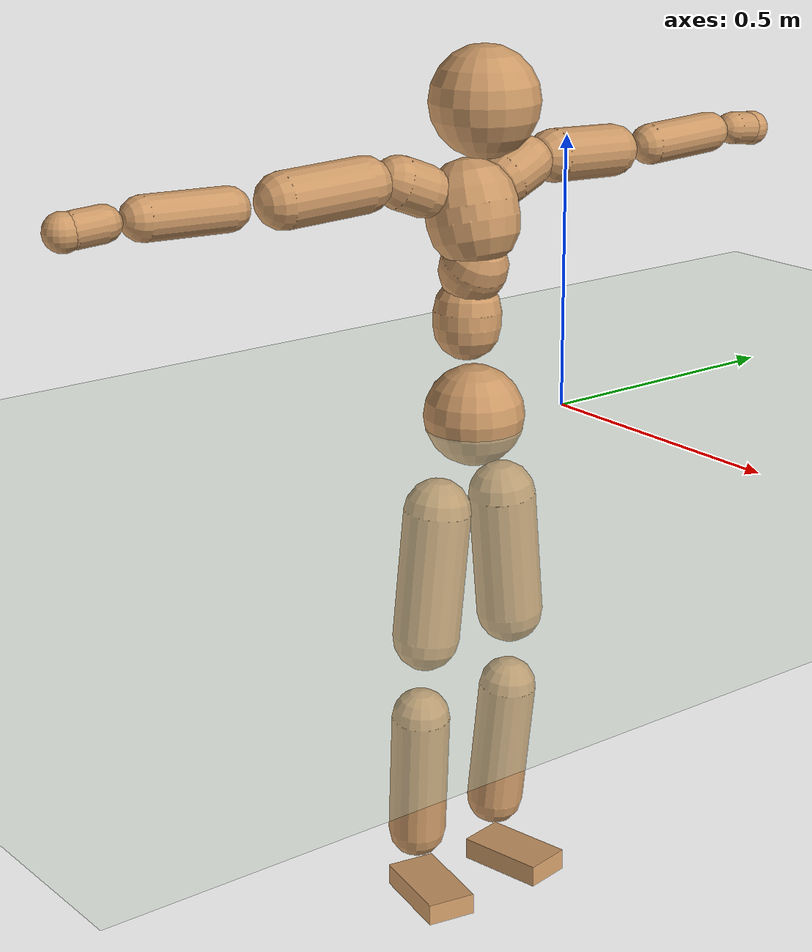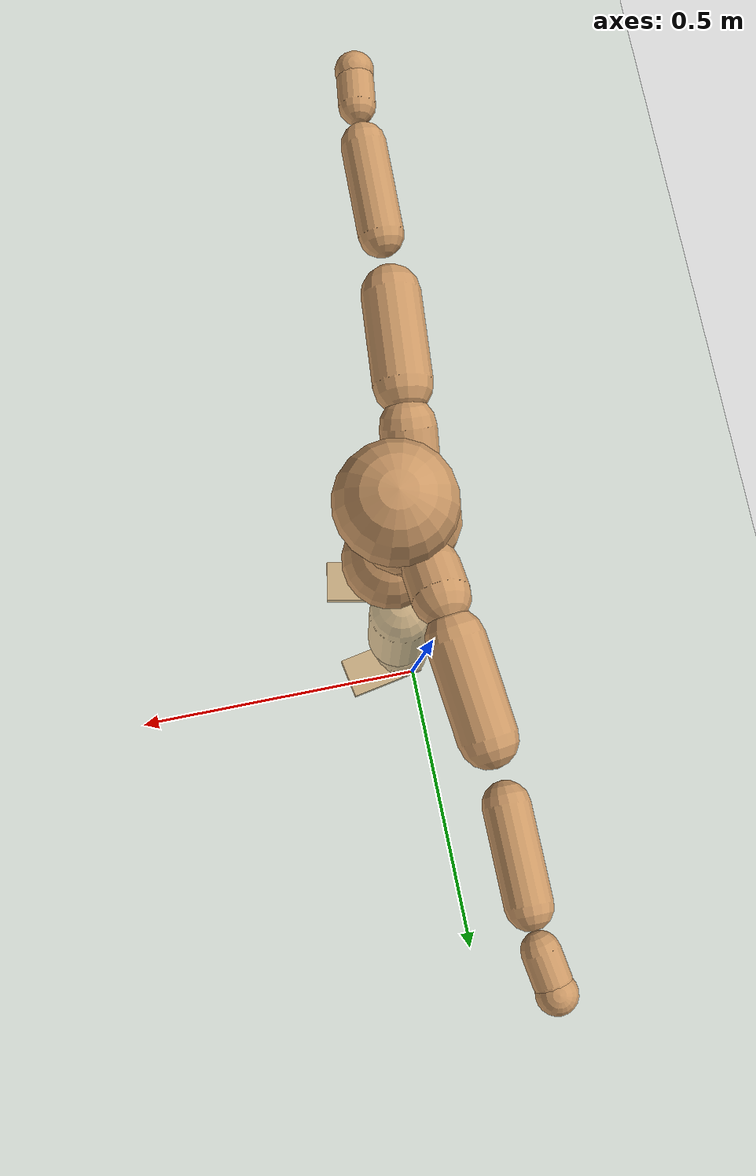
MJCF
<mujoco model="humanoid">
  <compiler coordinate="local"/>
  <default>
    <joint damping="0.0" armature="0.01" stiffness="0.0" limited="true"/>
    <geom conaffinity="1" condim="3" contype="7" margin="0.001" rgba="0.8 0.6 .4 1"/>
  </default>
  <asset>
    <texture type="skybox" builtin="gradient" rgb1=".4 .5 .6" rgb2="0 0 0" width="100" height="100"/>
    <texture builtin="flat" height="1278" mark="cross" markrgb="1 1 1" name="texgeom" random="0.01" rgb1="0.8 0.6 0.4" rgb2="0.8 0.6 0.4" type="cube" width="127"/>
    <texture builtin="checker" height="100" name="texplane" rgb1="0 0 0" rgb2="0.8 0.8 0.8" type="2d" width="100"/>
    <material name="MatPlane" reflectance="0.5" shininess="1" specular="1" texrepeat="60 60" texture="texplane"/>
    <material name="geom" texture="texgeom" texuniform="true"/>
  </asset>
  <worldbody>
    <light cutoff="100" diffuse="1 1 1" dir="-0 0 -1.3" directional="true" exponent="1" pos="0 0 1.3" specular=".1 .1 .1"/>
    <geom conaffinity="1" condim="3" name="floor" pos="0 0 0" rgba="0.8 0.9 0.8 1" size="100 100 .2" type="plane" material="MatPlane"/>
    <body name="Pelvis" pos="-0.0017 -0.2087 0.0206">
      <freejoint name="Pelvis"/>
      <geom type="sphere" contype="1" conaffinity="1" density="500" size="0.0918" pos="0.0000 0.0000 0.0000" name="Pelvis"/>
      <body name="L_Hip" pos="-0.0133 0.0702 -0.0926">
        <joint name="L_Hip_x" type="hinge" pos="0 0 0" axis="1 0 0" stiffness="800" damping="80" armature="0.02" range="-180.0000 180.0000"/>
        <joint name="L_Hip_y" type="hinge" pos="0 0 0" axis="0 1 0" stiffness="800" damping="80" armature="0.02" range="-180.0000 180.0000"/>
        <joint name="L_Hip_z" type="hinge" pos="0 0 0" axis="0 0 1" stiffness="800" damping="80" armature="0.02" range="-180.0000 180.0000"/>
        <geom type="capsule" contype="1" conaffinity="1" density="500" fromto="-0.0005 0.0072 -0.0790 -0.0020 0.0290 -0.3161" size="0.0627" name="L_Hip"/>
        <body name="L_Knee" pos="-0.0025 0.0362 -0.3952">
          <joint name="L_Knee_x" type="hinge" pos="0 0 0" axis="1 0 0" stiffness="800" damping="80" armature="0.02" range="-180.0000 180.0000"/>
          <joint name="L_Knee_y" type="hinge" pos="0 0 0" axis="0 1 0" stiffness="800" damping="80" armature="0.02" range="-180.0000 180.0000"/>
          <joint name="L_Knee_z" type="hinge" pos="0 0 0" axis="0 0 1" stiffness="800" damping="80" armature="0.02" range="-180.0000 180.0000"/>
          <geom type="capsule" contype="1" conaffinity="1" density="500" fromto="-0.0092 -0.0025 -0.0830 -0.0367 -0.0098 -0.3319" size="0.0542" name="L_Knee"/>
          <body name="L_Ankle" pos="-0.0458 -0.0123 -0.4149">
            <joint name="L_Ankle_x" type="hinge" pos="0 0 0" axis="1 0 0" stiffness="800" damping="80" armature="0.02" range="-180.0000 180.0000"/>
            <joint name="L_Ankle_y" type="hinge" pos="0 0 0" axis="0 1 0" stiffness="800" damping="80" armature="0.02" range="-180.0000 180.0000"/>
            <joint name="L_Ankle_z" type="hinge" pos="0 0 0" axis="0 0 1" stiffness="800" damping="80" armature="0.02" range="-180.0000 180.0000"/>
            <geom type="box" contype="1" conaffinity="1" density="500" pos="0.0598 0.0112 -0.0288" size="0.0857 0.0455 0.0208" quat="0.9957 0.0000 0.0000 0.0925" name="L_Ankle"/>
            <body name="L_Toe" pos="0.1197 0.0224 -0.0576">
              <joint name="L_Toe_x" type="hinge" pos="0 0 0" axis="1 0 0" stiffness="500" damping="50" armature="0.02" range="-180.0000 180.0000"/>
              <joint name="L_Toe_y" type="hinge" pos="0 0 0" axis="0 1 0" stiffness="500" damping="50" armature="0.02" range="-180.0000 180.0000"/>
              <joint name="L_Toe_z" type="hinge" pos="0 0 0" axis="0 0 1" stiffness="500" damping="50" armature="0.02" range="-180.0000 180.0000"/>
              <geom type="box" contype="1" conaffinity="1" density="500" pos="0.0000 0.0000 0.0282" size="0.0009 0.0023 0.001" quat="0.9951 0.0000 0.0000 0.0989" name="L_Toe"/>
            </body>
          </body>
        </body>
      </body>
      <body name="R_Hip" pos="-0.0095 -0.0676 -0.0914">
        <joint name="R_Hip_x" type="hinge" pos="0 0 0" axis="1 0 0" stiffness="800" damping="80" armature="0.02" range="-180.0000 180.0000"/>
        <joint name="R_Hip_y" type="hinge" pos="0 0 0" axis="0 1 0" stiffness="800" damping="80" armature="0.02" range="-180.0000 180.0000"/>
        <joint name="R_Hip_z" type="hinge" pos="0 0 0" axis="0 0 1" stiffness="800" damping="80" armature="0.02" range="-180.0000 180.0000"/>
        <geom type="capsule" contype="1" conaffinity="1" density="500" fromto="-0.0012 -0.0083 -0.0803 -0.0049 -0.0334 -0.3213" size="0.0618" name="R_Hip"/>
        <body name="R_Knee" pos="-0.0061 -0.0417 -0.4017">
          <joint name="R_Knee_x" type="hinge" pos="0 0 0" axis="1 0 0" stiffness="800" damping="80" armature="0.02" range="-180.0000 180.0000"/>
          <joint name="R_Knee_y" type="hinge" pos="0 0 0" axis="0 1 0" stiffness="800" damping="80" armature="0.02" range="-180.0000 180.0000"/>
          <joint name="R_Knee_z" type="hinge" pos="0 0 0" axis="0 0 1" stiffness="800" damping="80" armature="0.02" range="-180.0000 180.0000"/>
          <geom type="capsule" contype="1" conaffinity="1" density="500" fromto="-0.0088 0.0030 -0.0827 -0.0350 0.0120 -0.3308" size="0.0543" name="R_Knee"/>
          <body name="R_Ankle" pos="-0.0438 0.015 -0.4134">
            <joint name="R_Ankle_x" type="hinge" pos="0 0 0" axis="1 0 0" stiffness="800" damping="80" armature="0.02" range="-180.0000 180.0000"/>
            <joint name="R_Ankle_y" type="hinge" pos="0 0 0" axis="0 1 0" stiffness="800" damping="80" armature="0.02" range="-180.0000 180.0000"/>
            <joint name="R_Ankle_z" type="hinge" pos="0 0 0" axis="0 0 1" stiffness="800" damping="80" armature="0.02" range="-180.0000 180.0000"/>
            <geom type="box" contype="1" conaffinity="1" density="500" pos="0.0614 -0.0115 -0.0245" size="0.0867 0.0463 0.0204" quat="0.9957 0.0000 0.0000 -0.0923" name="R_Ankle"/>
            <body name="R_Toe" pos="0.1228 -0.023 -0.049">
              <joint name="R_Toe_x" type="hinge" pos="0 0 0" axis="1 0 0" stiffness="500" damping="50" armature="0.02" range="-180.0000 180.0000"/>
              <joint name="R_Toe_y" type="hinge" pos="0 0 0" axis="0 1 0" stiffness="500" damping="50" armature="0.02" range="-180.0000 180.0000"/>
              <joint name="R_Toe_z" type="hinge" pos="0 0 0" axis="0 0 1" stiffness="500" damping="50" armature="0.02" range="-180.0000 180.0000"/>
              <geom type="box" contype="1" conaffinity="1" density="500" pos="0.0000 0.0000 0.0269" size="0.0008 0.0023 0.0011" quat="0.9965 0.0000 0.0000 -0.0831" name="R_Toe"/>
            </body>
          </body>
        </body>
      </body>
      <body name="Torso" pos="-0.0184 -0.0031 0.1065">
        <joint name="Torso_x" type="hinge" pos="0 0 0" axis="1 0 0" stiffness="1000" damping="100" armature="0.02" range="-180.0000 180.0000"/>
        <joint name="Torso_y" type="hinge" pos="0 0 0" axis="0 1 0" stiffness="1000" damping="100" armature="0.02" range="-180.0000 180.0000"/>
        <joint name="Torso_z" type="hinge" pos="0 0 0" axis="0 0 1" stiffness="1000" damping="100" armature="0.02" range="-180.0000 180.0000"/>
        <geom type="capsule" contype="1" conaffinity="1" density="500" fromto="-0.0008 0.0026 0.0819 -0.0005 0.0017 0.0546" size="0.061566" name="Torso"/>
        <body name="Spine" pos="-0.0013 0.0043 0.1366">
          <joint name="Spine_x" type="hinge" pos="0 0 0" axis="1 0 0" stiffness="1000" damping="100" armature="0.02" range="-180.0000 180.0000"/>
          <joint name="Spine_y" type="hinge" pos="0 0 0" axis="0 1 0" stiffness="1000" damping="100" armature="0.02" range="-180.0000 180.0000"/>
          <joint name="Spine_z" type="hinge" pos="0 0 0" axis="0 0 1" stiffness="1000" damping="100" armature="0.02" range="-180.0000 180.0000"/>
          <geom type="capsule" contype="1" conaffinity="1" density="500" fromto="0.0171 0.0013 0.0297 0.0114 0.0009 0.0198" size="0.061008" name="Spine"/>
          <body name="Chest" pos="0.0284 0.0022 0.0495">
            <joint name="Chest_x" type="hinge" pos="0 0 0" axis="1 0 0" stiffness="1000" damping="100" armature="0.02" range="-180.0000 180.0000"/>
            <joint name="Chest_y" type="hinge" pos="0 0 0" axis="0 1 0" stiffness="1000" damping="100" armature="0.02" range="-180.0000 180.0000"/>
            <joint name="Chest_z" type="hinge" pos="0 0 0" axis="0 0 1" stiffness="1000" damping="100" armature="0.02" range="-180.0000 180.0000"/>
            <geom type="capsule" contype="1" conaffinity="1" density="500" fromto="-0.0220 -0.0008 0.0857 -0.0146 -0.0006 0.0572" size="0.083049" name="Chest"/>
            <body name="Neck" pos="-0.0394 -0.0029 0.2034">
              <joint name="Neck_x" type="hinge" pos="0 0 0" axis="1 0 0" stiffness="500" damping="50" armature="0.02" range="-180.0000 180.0000"/>
              <joint name="Neck_y" type="hinge" pos="0 0 0" axis="0 1 0" stiffness="500" damping="50" armature="0.02" range="-180.0000 180.0000"/>
              <joint name="Neck_z" type="hinge" pos="0 0 0" axis="0 0 1" stiffness="500" damping="50" armature="0.02" range="-180.0000 180.0000"/>
              <geom type="capsule" contype="1" conaffinity="1" density="500" fromto="0.0105 0.0008 0.0131 0.0418 0.0033 0.0523" size="0.0372" name="Neck"/>
              <body name="Head" pos="0.0523 0.0041 0.0654">
                <joint name="Head_x" type="hinge" pos="0 0 0" axis="1 0 0" stiffness="500" damping="50" armature="0.02" range="-180.0000 180.0000"/>
                <joint name="Head_y" type="hinge" pos="0 0 0" axis="0 1 0" stiffness="500" damping="50" armature="0.02" range="-180.0000 180.0000"/>
                <joint name="Head_z" type="hinge" pos="0 0 0" axis="0 0 1" stiffness="500" damping="50" armature="0.02" range="-180.0000 180.0000"/>
                <geom type="sphere" contype="1" conaffinity="1" density="500" size="0.0976" pos="0.0000 0.0000 0.0000" name="Head"/>
              </body>
            </body>
            <body name="L_Thorax" pos="-0.0329 0.0718 0.1136">
              <joint name="L_Thorax_x" type="hinge" pos="0 0 0" axis="1 0 0" stiffness="500" damping="50" armature="0.02" range="-180.0000 180.0000"/>
              <joint name="L_Thorax_y" type="hinge" pos="0 0 0" axis="0 1 0" stiffness="500" damping="50" armature="0.02" range="-180.0000 180.0000"/>
              <joint name="L_Thorax_z" type="hinge" pos="0 0 0" axis="0 0 1" stiffness="500" damping="50" armature="0.02" range="-180.0000 180.0000"/>
              <geom type="capsule" contype="1" conaffinity="1" density="500" fromto="-0.0012 0.0162 0.0068 -0.0049 0.0650 0.0272" size="0.0481" name="L_Thorax"/>
              <body name="L_Shoulder" pos="-0.0061 0.0812 0.034">
                <joint name="L_Shoulder_x" type="hinge" pos="0 0 0" axis="1 0 0" stiffness="500" damping="50" armature="0.02" range="-720.0000 720.0000"/>
                <joint name="L_Shoulder_y" type="hinge" pos="0 0 0" axis="0 1 0" stiffness="500" damping="50" armature="0.02" range="-720.0000 720.0000"/>
                <joint name="L_Shoulder_z" type="hinge" pos="0 0 0" axis="0 0 1" stiffness="500" damping="50" armature="0.02" range="-720.0000 720.0000"/>
                <geom type="capsule" contype="1" conaffinity="1" density="500" fromto="-0.0061 0.0530 -0.0035 -0.0244 0.2118 -0.0141" size="0.0484" name="L_Shoulder"/>
                <body name="L_Elbow" pos="-0.0305 0.2648 -0.0177">
                  <joint name="L_Elbow_x" type="hinge" pos="0 0 0" axis="1 0 0" stiffness="500" damping="50" armature="0.02" range="-720.0000 720.0000"/>
                  <joint name="L_Elbow_y" type="hinge" pos="0 0 0" axis="0 1 0" stiffness="500" damping="50" armature="0.02" range="-720.0000 720.0000"/>
                  <joint name="L_Elbow_z" type="hinge" pos="0 0 0" axis="0 0 1" stiffness="500" damping="50" armature="0.02" range="-720.0000 720.0000"/>
                  <geom type="capsule" contype="1" conaffinity="1" density="500" fromto="-0.0001 0.0509 0.0021 -0.0003 0.2036 0.0086" size="0.0381" name="L_Elbow"/>
                  <body name="L_Wrist" pos="-0.0003 0.2545 0.0107">
                    <joint name="L_Wrist_x" type="hinge" pos="0 0 0" axis="1 0 0" stiffness="300" damping="30" armature="0.02" range="-180.0000 180.0000"/>
                    <joint name="L_Wrist_y" type="hinge" pos="0 0 0" axis="0 1 0" stiffness="300" damping="30" armature="0.02" range="-180.0000 180.0000"/>
                    <joint name="L_Wrist_z" type="hinge" pos="0 0 0" axis="0 0 1" stiffness="300" damping="30" armature="0.02" range="-180.0000 180.0000"/>
                    <geom type="capsule" contype="1" conaffinity="1" density="500" fromto="-0.0028 0.0165 -0.0021 -0.0112 0.0659 -0.0082" size="0.0307" name="L_Wrist"/>
                    <body name="L_Hand" pos="-0.0139 0.0824 -0.0103">
                      <joint name="L_Hand_x" type="hinge" pos="0 0 0" axis="1 0 0" stiffness="300" damping="30" armature="0.02" range="-180.0000 180.0000"/>
                      <joint name="L_Hand_y" type="hinge" pos="0 0 0" axis="0 1 0" stiffness="300" damping="30" armature="0.02" range="-180.0000 180.0000"/>
                      <joint name="L_Hand_z" type="hinge" pos="0 0 0" axis="0 0 1" stiffness="300" damping="30" armature="0.02" range="-180.0000 180.0000"/>
                      <geom type="sphere" contype="1" conaffinity="1" density="500" size="0.0332" pos="0.0000 0.0000 0.0000" name="L_Hand"/>
                    </body>
                  </body>
                </body>
              </body>
            </body>
            <body name="R_Thorax" pos="-0.0375 -0.0731 0.1117">
              <joint name="R_Thorax_x" type="hinge" pos="0 0 0" axis="1 0 0" stiffness="500" damping="50" armature="0.02" range="-180.0000 180.0000"/>
              <joint name="R_Thorax_y" type="hinge" pos="0 0 0" axis="0 1 0" stiffness="500" damping="50" armature="0.02" range="-180.0000 180.0000"/>
              <joint name="R_Thorax_z" type="hinge" pos="0 0 0" axis="0 0 1" stiffness="500" damping="50" armature="0.02" range="-180.0000 180.0000"/>
              <geom type="capsule" contype="1" conaffinity="1" density="500" fromto="-0.0015 -0.0171 0.0067 -0.0059 -0.0685 0.0270" size="0.047" name="R_Thorax"/>
              <body name="R_Shoulder" pos="-0.0074 -0.0856 0.0337">
                <joint name="R_Shoulder_x" type="hinge" pos="0 0 0" axis="1 0 0" stiffness="500" damping="50" armature="0.02" range="-720.0000 720.0000"/>
                <joint name="R_Shoulder_y" type="hinge" pos="0 0 0" axis="0 1 0" stiffness="500" damping="50" armature="0.02" range="-720.0000 720.0000"/>
                <joint name="R_Shoulder_z" type="hinge" pos="0 0 0" axis="0 0 1" stiffness="500" damping="50" armature="0.02" range="-720.0000 720.0000"/>
                <geom type="capsule" contype="1" conaffinity="1" density="500" fromto="-0.0043 -0.0514 -0.0031 -0.0173 -0.2057 -0.0122" size="0.0496" name="R_Shoulder"/>
                <body name="R_Elbow" pos="-0.0216 -0.2571 -0.0153">
                  <joint name="R_Elbow_x" type="hinge" pos="0 0 0" axis="1 0 0" stiffness="500" damping="50" armature="0.02" range="-720.0000 720.0000"/>
                  <joint name="R_Elbow_y" type="hinge" pos="0 0 0" axis="0 1 0" stiffness="500" damping="50" armature="0.02" range="-720.0000 720.0000"/>
                  <joint name="R_Elbow_z" type="hinge" pos="0 0 0" axis="0 0 1" stiffness="500" damping="50" armature="0.02" range="-720.0000 720.0000"/>
                  <geom type="capsule" contype="1" conaffinity="1" density="500" fromto="-0.0009 -0.0521 0.0017 -0.0036 -0.2084 0.0068" size="0.0381" name="R_Elbow"/>
                  <body name="R_Wrist" pos="-0.0045 -0.2605 0.0086">
                    <joint name="R_Wrist_x" type="hinge" pos="0 0 0" axis="1 0 0" stiffness="300" damping="30" armature="0.02" range="-180.0000 180.0000"/>
                    <joint name="R_Wrist_y" type="hinge" pos="0 0 0" axis="0 1 0" stiffness="300" damping="30" armature="0.02" range="-180.0000 180.0000"/>
                    <joint name="R_Wrist_z" type="hinge" pos="0 0 0" axis="0 0 1" stiffness="300" damping="30" armature="0.02" range="-180.0000 180.0000"/>
                    <geom type="capsule" contype="1" conaffinity="1" density="500" fromto="-0.0021 -0.0165 -0.0015 -0.0086 -0.0659 -0.0059" size="0.0312" name="R_Wrist"/>
                    <body name="R_Hand" pos="-0.0107 -0.0823 -0.0074">
                      <joint name="R_Hand_x" type="hinge" pos="0 0 0" axis="1 0 0" stiffness="300" damping="30" armature="0.02" range="-180.0000 180.0000"/>
                      <joint name="R_Hand_y" type="hinge" pos="0 0 0" axis="0 1 0" stiffness="300" damping="30" armature="0.02" range="-180.0000 180.0000"/>
                      <joint name="R_Hand_z" type="hinge" pos="0 0 0" axis="0 0 1" stiffness="300" damping="30" armature="0.02" range="-180.0000 180.0000"/>
                      <geom type="sphere" contype="1" conaffinity="1" density="500" size="0.0330" pos="0.0000 0.0000 0.0000" name="R_Hand"/>
                    </body>
                  </body>
                </body>
              </body>
            </body>
          </body>
        </body>
      </body>
    </body>
  </worldbody>
  <actuator>
    <motor name="L_Hip_x" joint="L_Hip_x" gear="500"/>
    <motor name="L_Hip_y" joint="L_Hip_y" gear="500"/>
    <motor name="L_Hip_z" joint="L_Hip_z" gear="500"/>
    <motor name="L_Knee_x" joint="L_Knee_x" gear="500"/>
    <motor name="L_Knee_y" joint="L_Knee_y" gear="500"/>
    <motor name="L_Knee_z" joint="L_Knee_z" gear="500"/>
    <motor name="L_Ankle_x" joint="L_Ankle_x" gear="500"/>
    <motor name="L_Ankle_y" joint="L_Ankle_y" gear="500"/>
    <motor name="L_Ankle_z" joint="L_Ankle_z" gear="500"/>
    <motor name="L_Toe_x" joint="L_Toe_x" gear="500"/>
    <motor name="L_Toe_y" joint="L_Toe_y" gear="500"/>
    <motor name="L_Toe_z" joint="L_Toe_z" gear="500"/>
    <motor name="R_Hip_x" joint="R_Hip_x" gear="500"/>
    <motor name="R_Hip_y" joint="R_Hip_y" gear="500"/>
    <motor name="R_Hip_z" joint="R_Hip_z" gear="500"/>
    <motor name="R_Knee_x" joint="R_Knee_x" gear="500"/>
    <motor name="R_Knee_y" joint="R_Knee_y" gear="500"/>
    <motor name="R_Knee_z" joint="R_Knee_z" gear="500"/>
    <motor name="R_Ankle_x" joint="R_Ankle_x" gear="500"/>
    <motor name="R_Ankle_y" joint="R_Ankle_y" gear="500"/>
    <motor name="R_Ankle_z" joint="R_Ankle_z" gear="500"/>
    <motor name="R_Toe_x" joint="R_Toe_x" gear="500"/>
    <motor name="R_Toe_y" joint="R_Toe_y" gear="500"/>
    <motor name="R_Toe_z" joint="R_Toe_z" gear="500"/>
    <motor name="Torso_x" joint="Torso_x" gear="500"/>
    <motor name="Torso_y" joint="Torso_y" gear="500"/>
    <motor name="Torso_z" joint="Torso_z" gear="500"/>
    <motor name="Spine_x" joint="Spine_x" gear="500"/>
    <motor name="Spine_y" joint="Spine_y" gear="500"/>
    <motor name="Spine_z" joint="Spine_z" gear="500"/>
    <motor name="Chest_x" joint="Chest_x" gear="500"/>
    <motor name="Chest_y" joint="Chest_y" gear="500"/>
    <motor name="Chest_z" joint="Chest_z" gear="500"/>
    <motor name="Neck_x" joint="Neck_x" gear="500"/>
    <motor name="Neck_y" joint="Neck_y" gear="500"/>
    <motor name="Neck_z" joint="Neck_z" gear="500"/>
    <motor name="Head_x" joint="Head_x" gear="500"/>
    <motor name="Head_y" joint="Head_y" gear="500"/>
    <motor name="Head_z" joint="Head_z" gear="500"/>
    <motor name="L_Thorax_x" joint="L_Thorax_x" gear="500"/>
    <motor name="L_Thorax_y" joint="L_Thorax_y" gear="500"/>
    <motor name="L_Thorax_z" joint="L_Thorax_z" gear="500"/>
    <motor name="L_Shoulder_x" joint="L_Shoulder_x" gear="500"/>
    <motor name="L_Shoulder_y" joint="L_Shoulder_y" gear="500"/>
    <motor name="L_Shoulder_z" joint="L_Shoulder_z" gear="500"/>
    <motor name="L_Elbow_x" joint="L_Elbow_x" gear="500"/>
    <motor name="L_Elbow_y" joint="L_Elbow_y" gear="500"/>
    <motor name="L_Elbow_z" joint="L_Elbow_z" gear="500"/>
    <motor name="L_Wrist_x" joint="L_Wrist_x" gear="500"/>
    <motor name="L_Wrist_y" joint="L_Wrist_y" gear="500"/>
    <motor name="L_Wrist_z" joint="L_Wrist_z" gear="500"/>
    <motor name="L_Hand_x" joint="L_Hand_x" gear="500"/>
    <motor name="L_Hand_y" joint="L_Hand_y" gear="500"/>
    <motor name="L_Hand_z" joint="L_Hand_z" gear="500"/>
    <motor name="R_Thorax_x" joint="R_Thorax_x" gear="500"/>
    <motor name="R_Thorax_y" joint="R_Thorax_y" gear="500"/>
    <motor name="R_Thorax_z" joint="R_Thorax_z" gear="500"/>
    <motor name="R_Shoulder_x" joint="R_Shoulder_x" gear="500"/>
    <motor name="R_Shoulder_y" joint="R_Shoulder_y" gear="500"/>
    <motor name="R_Shoulder_z" joint="R_Shoulder_z" gear="500"/>
    <motor name="R_Elbow_x" joint="R_Elbow_x" gear="500"/>
    <motor name="R_Elbow_y" joint="R_Elbow_y" gear="500"/>
    <motor name="R_Elbow_z" joint="R_Elbow_z" gear="500"/>
    <motor name="R_Wrist_x" joint="R_Wrist_x" gear="500"/>
    <motor name="R_Wrist_y" joint="R_Wrist_y" gear="500"/>
    <motor name="R_Wrist_z" joint="R_Wrist_z" gear="500"/>
    <motor name="R_Hand_x" joint="R_Hand_x" gear="500"/>
    <motor name="R_Hand_y" joint="R_Hand_y" gear="500"/>
    <motor name="R_Hand_z" joint="R_Hand_z" gear="500"/>
  </actuator>
  <contact>
    <exclude body1="Torso" body2="Chest"/>
    <exclude body1="Head" body2="Chest"/>
    <exclude body1="R_Knee" body2="R_Toe"/>
    <exclude body1="R_Knee" body2="L_Ankle"/>
    <exclude body1="R_Knee" body2="L_Toe"/>
    <exclude body1="L_Knee" body2="L_Toe"/>
    <exclude body1="L_Knee" body2="R_Ankle"/>
    <exclude body1="L_Knee" body2="R_Toe"/>
    <exclude body1="L_Shoulder" body2="Chest"/>
    <exclude body1="R_Shoulder" body2="Chest"/>
  </contact>
  <sensor/>
  <size njmax="700" nconmax="700"/>
</mujoco>
